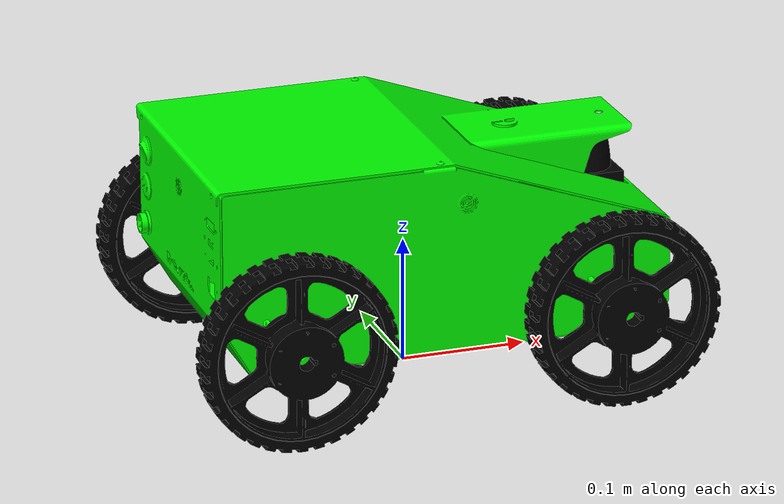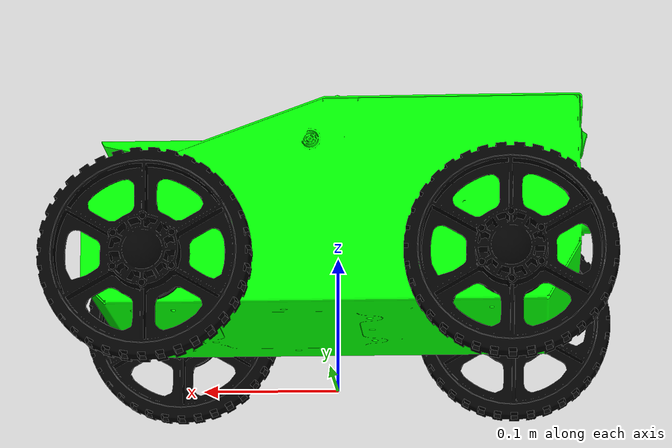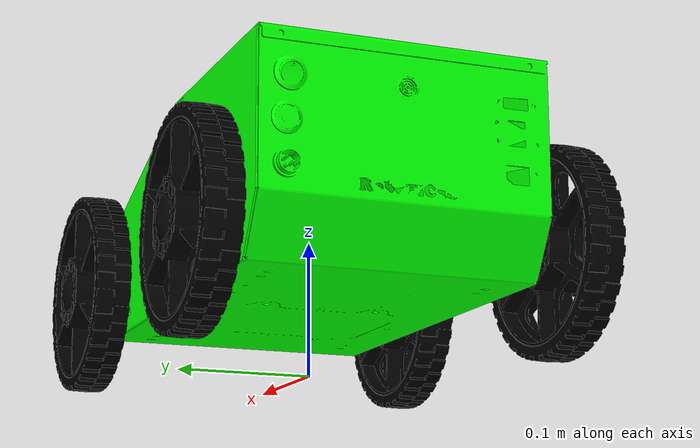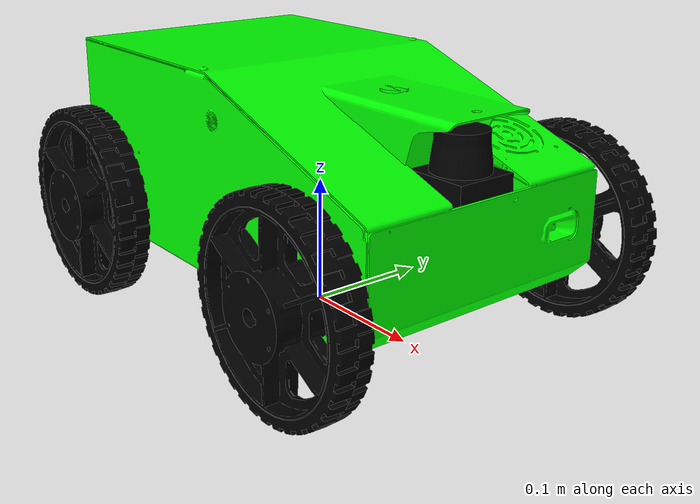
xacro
<?xml version="1.0"?>
<robot xmlns:xacro="http://www.ros.org/wiki/xacro" name="lizi_robot" description="lizi Robot">
<xacro:property name="M_PI" value="3.1415926535897931"/>
<xacro:include filename="$(find robotican_common)/models/softkinetic_camera_ds325/model.xacro" />
  <link
    name="base_link">
    <inertial>
      <origin
        xyz="0.0 0.0 0.04047"
        rpy="0 0 0" />
      <mass
        value="5.47025" />
      <inertia
        ixx="0.004176"
        ixy="0.00013487"
        ixz="-0.00050843"
        iyy="0.0083952"
        iyz="8.2807E-06"
        izz="0.0098763" />
    </inertial>
    <visual>
      <origin
        xyz="0 0 0"
        rpy="0 0 0" />
      <geometry>
        <mesh
          filename="package://robotican_lizi/description/meshes/base_link.STL" />
      </geometry>
      <material
        name="">
        <color
          rgba="0.0 1.0 0.0 1" />
      </material>
    </visual>
    <collision>
      <origin
        xyz="0 0 0"
        rpy="0 0 0" />
      <geometry>
        <mesh
          filename="package://robotican_lizi/description/meshes/base_link.STL" />
      </geometry>
    </collision>
  </link>
  <link
    name="base_footprint" />
  <joint
    name="footprint_joint"
    type="fixed">
    <origin
      xyz="0 0 0.0762"
      rpy="0 0 0" />
    <parent
      link="base_footprint" />
    <child
      link="base_link" />
    <axis
      xyz="0 0 0" />
  </joint>
  <link
    name="laser_link">
    <visual>
      <origin
        xyz="0 0 0"
        rpy="0 0 0" />
      <geometry>
        <mesh
          filename="package://robotican_lizi/description/meshes/laser_link.STL" />
      </geometry>
      <material
        name="">
        <color
          rgba="0.0 0.0 0.0 1" />
      </material>
    </visual>
    <collision>
      <origin
        xyz="0 0 0"
        rpy="0 0 0" />
      <geometry>
        <mesh
          filename="package://robotican_lizi/description/meshes/laser_link.STL" />
      </geometry>
    </collision>
  </link>
  <joint
    name="laser_joint"
    type="fixed">
    <origin
      xyz="0.1495 0 0.079"
      rpy="0 0 0" />
    <parent
      link="base_link" />
    <child
      link="laser_link" />
    <axis
      xyz="0 0 0" />
  </joint>
  <link
    name="rear_urf_link" />
  <joint
    name="rear_urf_joint"
    type="fixed">
    <origin
      xyz="-0.18 0 0.0902"
      rpy="0 0 3.1416" />
    <parent
      link="base_link" />
    <child
      link="rear_urf_link" />
    <axis
      xyz="0 0 0" />
  </joint>
<link
    name="left_urf_link" />
  <joint
    name="left_urf_joint"
    type="fixed">
    <origin
      xyz="0.014542 0.1055 0.0902"
      rpy="0 0 1.5708" />
    <parent
      link="base_link" />
    <child
      link="left_urf_link" />
    <axis
      xyz="0 0 0" />
  </joint>
  <link
    name="right_urf_link" />
  <joint
    name="right_urf_joint"
    type="fixed">
    <origin
      xyz="0.014542 -0.1055 0.0902"
      rpy="0 0 -1.5708" />
    <parent
      link="base_link" />
    <child
      link="right_urf_link" />
    <axis
      xyz="0 0 0" />
  </joint>
  <link
    name="FL_wheel_link">
    <inertial>
      <origin
        xyz="-9.1354E-06 -0.001115 4.3697E-07"
        rpy="0 0 0" />
      <mass
        value="0.20156" />
      <inertia
        ixx="0.00032875"
        ixy="8.8617E-09"
        ixz="8.2109E-12"
        iyy="0.00062398"
        iyz="5.8123E-10"
        izz="0.00032873" />
    </inertial>
    <visual>
      <origin
        xyz="0 0 0"
        rpy="0 0 0" />
      <geometry>
        <mesh
          filename="package://robotican_lizi/description/meshes/wheel_link.STL" />
      </geometry>
      <material
        name="">
        <color
          rgba="0.0 0.0 0.0 1" />
      </material>
    </visual>
    <collision>
      <origin
        xyz="0 0 0"
        rpy="${M_PI/2} 0 0" />
      <geometry>

  <cylinder  length="0.05" radius="0.0762"/>
      </geometry>
    </collision>
  </link>
  <joint
    name="FL_wheel_joint"
    type="continuous">
    <origin
      xyz="0.13 0.13321 0"
      rpy="0 0 0" />
    <parent
      link="base_link" />
    <child
      link="FL_wheel_link" />
    <axis
      xyz="0 1 0" />
  </joint>
  <link
    name="RL_wheel_link">
    <inertial>
      <origin
        xyz="-9.1354E-06 -0.001115 4.3697E-07"
        rpy="0 0 0" />
      <mass
        value="0.20156" />
      <inertia
        ixx="0.00032875"
        ixy="8.8617E-09"
        ixz="8.2109E-12"
        iyy="0.00062398"
        iyz="5.8123E-10"
        izz="0.00032873" />
    </inertial>
    <visual>
      <origin
        xyz="0 0 0"
        rpy="0 0 0" />
      <geometry>
        <mesh
          filename="package://robotican_lizi/description/meshes/wheel_link.STL" />
      </geometry>
      <material
        name="">
        <color
          rgba="0.0 0.0 0.0 1" />
      </material>
    </visual>
    <collision>
      <origin
        xyz="0 0 0"
         rpy="${M_PI/2} 0 0" />
      <geometry>
  <cylinder  length="0.05" radius="0.0762"/>
      </geometry>
    </collision>
  </link>
  <joint
    name="RL_wheel_joint"
    type="continuous">
    <origin
      xyz="-0.13 0.13321 0"
      rpy="0 0 0" />
    <parent
      link="base_link" />
    <child
      link="RL_wheel_link" />
    <axis
      xyz="0 1 0" />
  </joint>
  <link
    name="FR_wheel_link">
    <inertial>
      <origin
        xyz="9.1354E-06 0.001115 4.3696E-07"
        rpy="0 0 0" />
      <mass
        value="0.20156" />
      <inertia
        ixx="0.00032875"
        ixy="8.8617E-09"
        ixz="-8.2128E-12"
        iyy="0.00062398"
        iyz="-5.8127E-10"
        izz="0.00032873" />
    </inertial>
    <visual>
      <origin
        xyz="0 0 0"
        rpy="0 0 0" />
      <geometry>
        <mesh
          filename="package://robotican_lizi/description/meshes/wheel_link.STL" />
      </geometry>
      <material
        name="">
        <color
          rgba="0.0 0.0 0.0 1" />
      </material>
    </visual>
    <collision>
      <origin
        xyz="0 0 0"
     rpy="${M_PI/2} 0 0" />
      <geometry>
  <cylinder  length="0.05" radius="0.0762"/>
      </geometry>
    </collision>
  </link>
  <joint
    name="FR_wheel_joint"
    type="continuous">
    <origin
      xyz="0.13 -0.13321 0"
      rpy="0 0 0" />
    <parent
      link="base_link" />
    <child
      link="FR_wheel_link" />
    <axis
      xyz="0 1 0" />
  </joint>
  <link
    name="RR_wheel_link">
    <inertial>
      <origin
        xyz="-9.1354E-06 0.001115 -4.3696E-07"
        rpy="0 0 0" />
      <mass
        value="0.20156" />
      <inertia
        ixx="0.00032875"
        ixy="-8.8617E-09"
        ixz="-8.2125E-12"
        iyy="0.00062398"
        iyz="5.8127E-10"
        izz="0.00032873" />
    </inertial>
    <visual>
      <origin
        xyz="0 0 0"
        rpy="0 0 0" />
      <geometry>
        <mesh
          filename="package://robotican_lizi/description/meshes/wheel_link.STL" />
      </geometry>
      <material
        name="">
        <color
          rgba="0.0 0.0 0.0 1" />
      </material>
    </visual>
    <collision>
      <origin
        xyz="0 0 0"
        rpy="${M_PI/2} 0 0" />
      <geometry>
  <cylinder  length="0.05" radius="0.0762"/>
      </geometry>
    </collision>
  </link>
  <joint
    name="RR_wheel_joint"
    type="continuous">
    <origin
      xyz="-0.13 -0.13321 0"
      rpy="0 0 0" />
    <parent
      link="base_link" />
    <child
      link="RR_wheel_link" />
    <axis
      xyz="0 1 0" />
  </joint>
  <link
    name="front_camera_link" />
  <joint
    name="front_camera_joint"
    type="fixed">
    <origin
      xyz="0.17275 0.068 0.0202"
      rpy="0 0 0" />
    <parent
      link="base_link" />
    <child
      link="front_camera_link" />
    <axis
      xyz="0 0 0" />
  </joint>

</robot>
